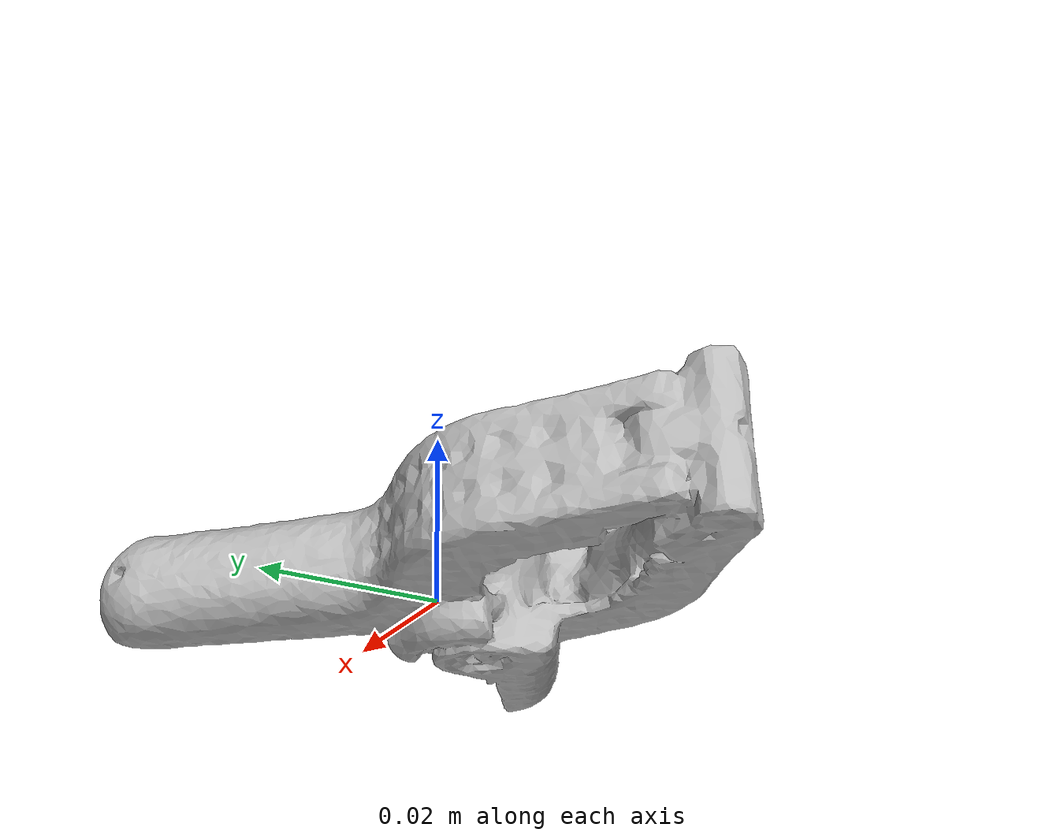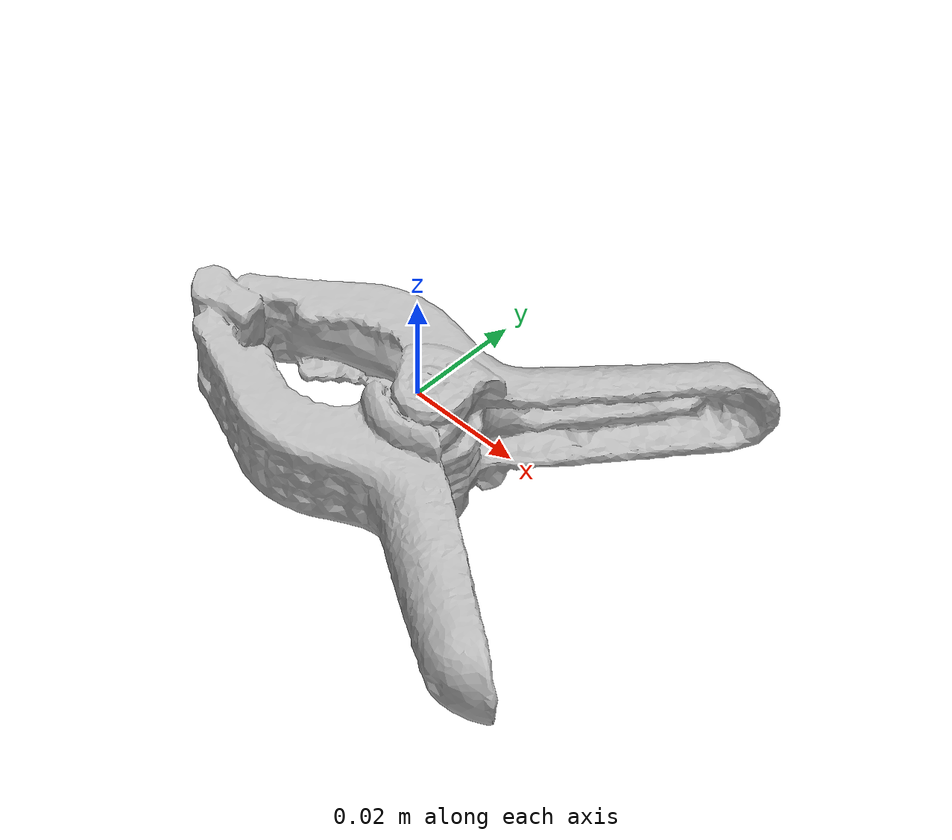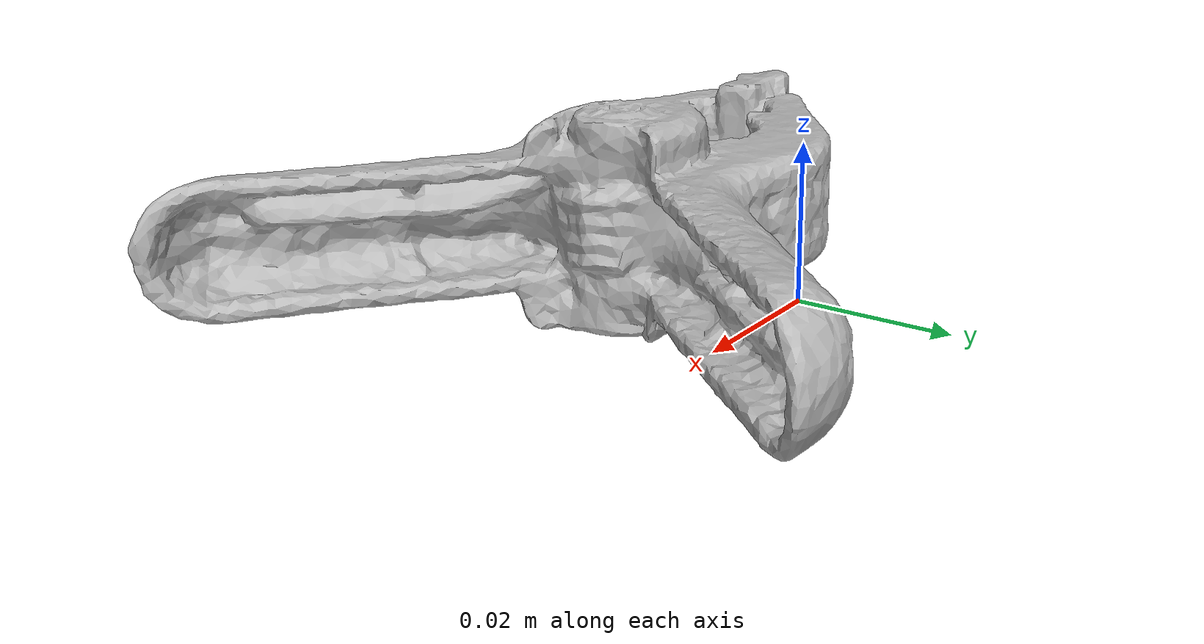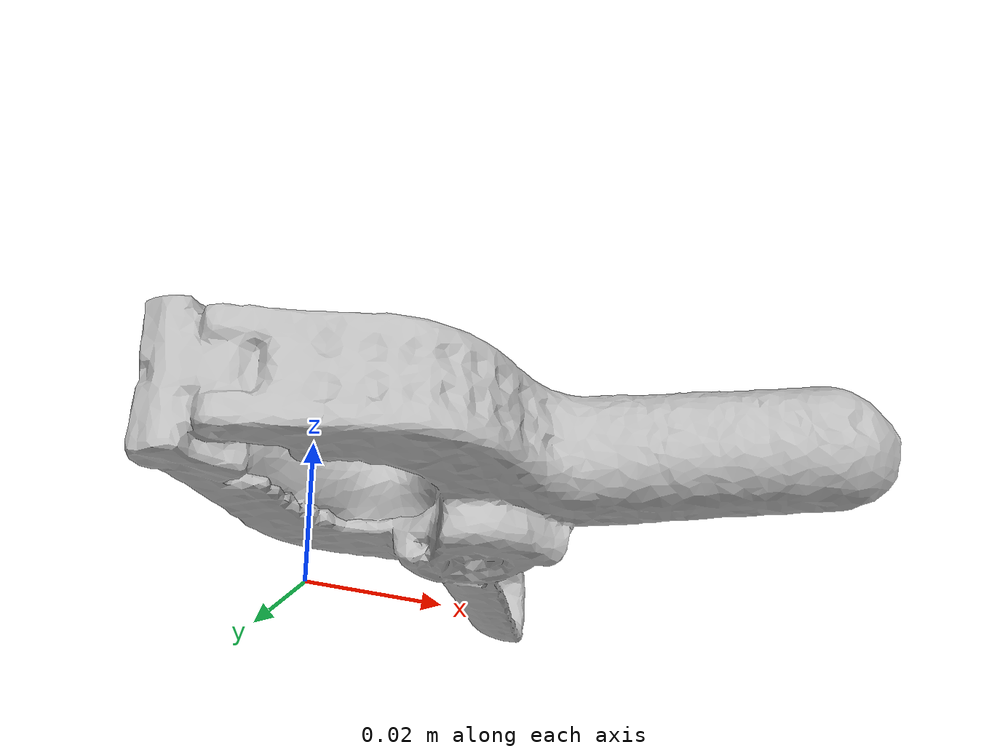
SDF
<?xml version='1.0'?>
<sdf version="1.4">
  <model name="medium_clamp">
    <static>false</static>
    <link name="link">
      <inertial>
        <pose>0.010827483056379221 -0.014903599956658636 0.012617934887942762 -1.8011855354168396 -1.557246698261016 1.9401151712398863</pose>
        <mass>2.2388684701155667e-05</mass>
        <inertia>
          <ixx>1.3188020578349315e-08</ixx>
          <ixy>-1.6243903842187778e-25</ixy>
          <ixz>1.0934878097180678e-27</ixz>
          <iyy>8.670795410871474e-09</iyy>
          <iyz>4.394010968970647e-25</iyz>
          <izz>5.803057357417044e-09</izz>
        </inertia>
      </inertial>
      <collision name="collision">
        <geometry>
          <mesh>
            <!-- Use a downsampled mesh for collisions -->
            <uri>model://050_medium_clamp/google_16k/050_medium_clamp.obj</uri>
            </mesh>
        </geometry>
        <surface>
          <friction>
            <ode>
              <mu>0.9</mu>
              <mu2>0.9</mu2>
            </ode>
          </friction>
          <contact>
            <ode>
              <kp>1000000000000.0</kp>
              <kd>1</kd>
              <min_depth>0.0001</min_depth>
              <max_vel>0.01</max_vel>
            </ode>
          </contact>
          <bounce>
            <restitution_coefficient>0.1</restitution_coefficient>
            <threshold>1000.0</threshold>
          </bounce>
        </surface>
      </collision>
      <visual name="visual">
        <geometry>
          <mesh>
            <uri>model://050_medium_clamp/google_16k/050_medium_clamp.dae</uri>
            </mesh>
        </geometry>
      </visual>
    </link>
  </model>
</sdf>
